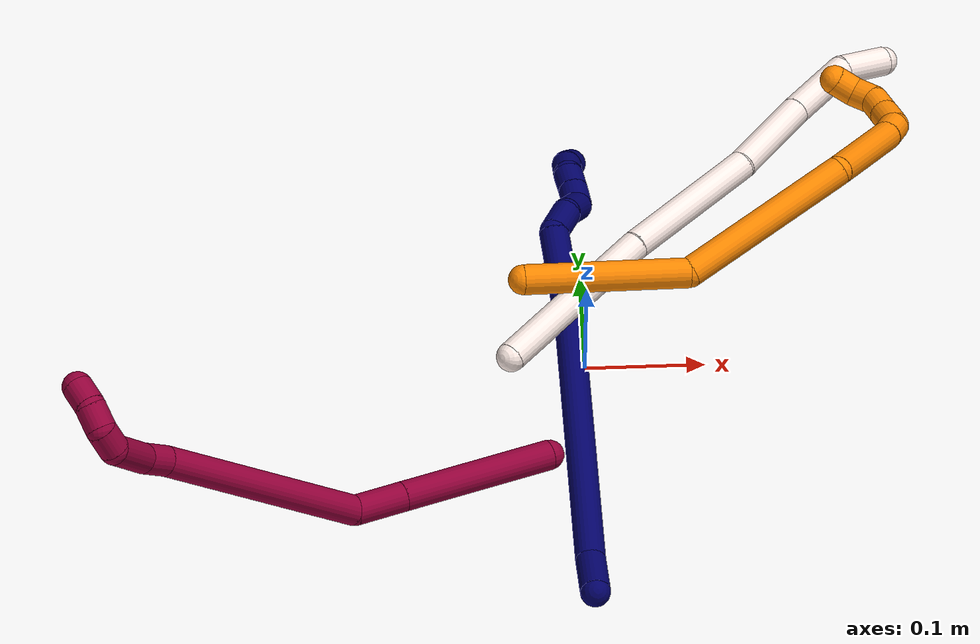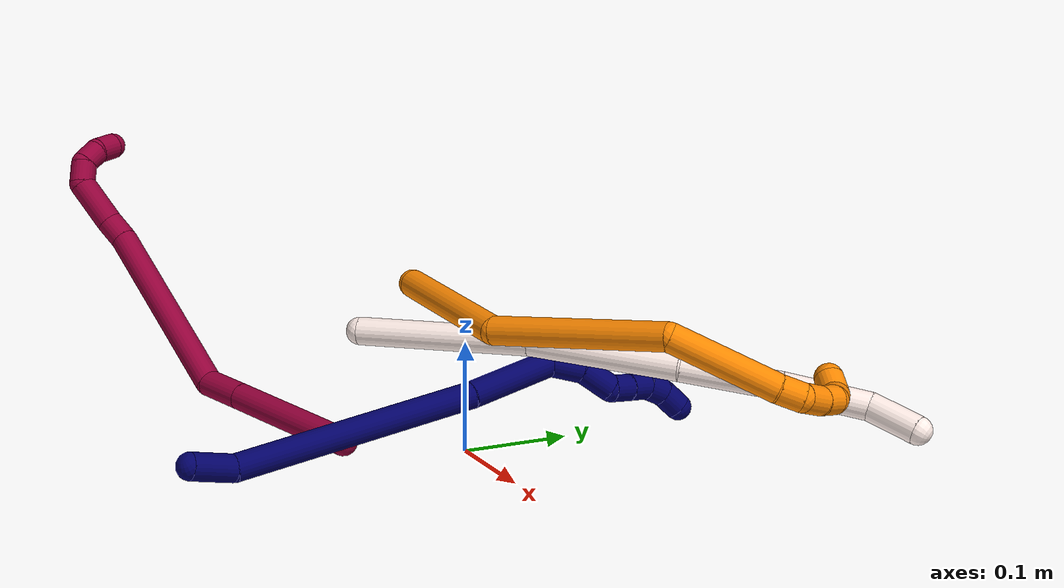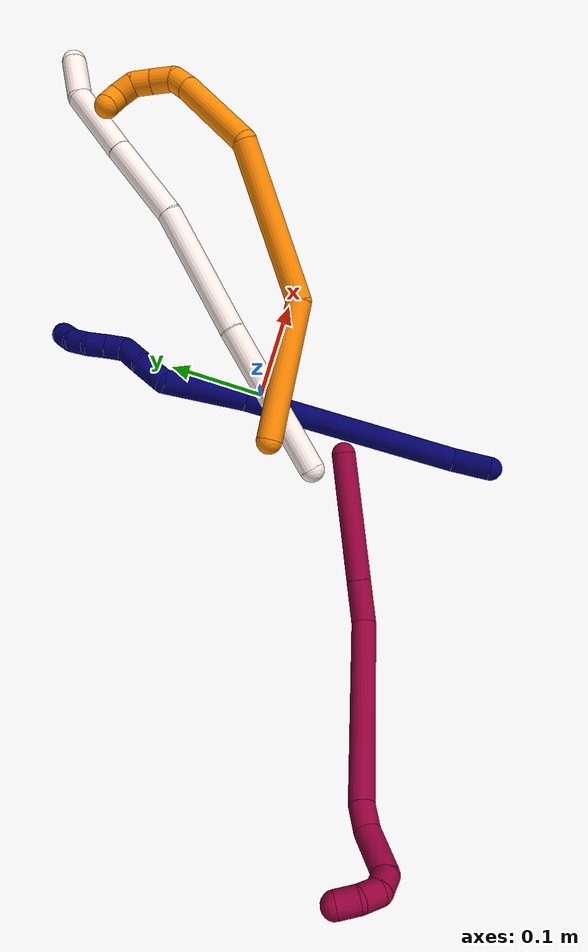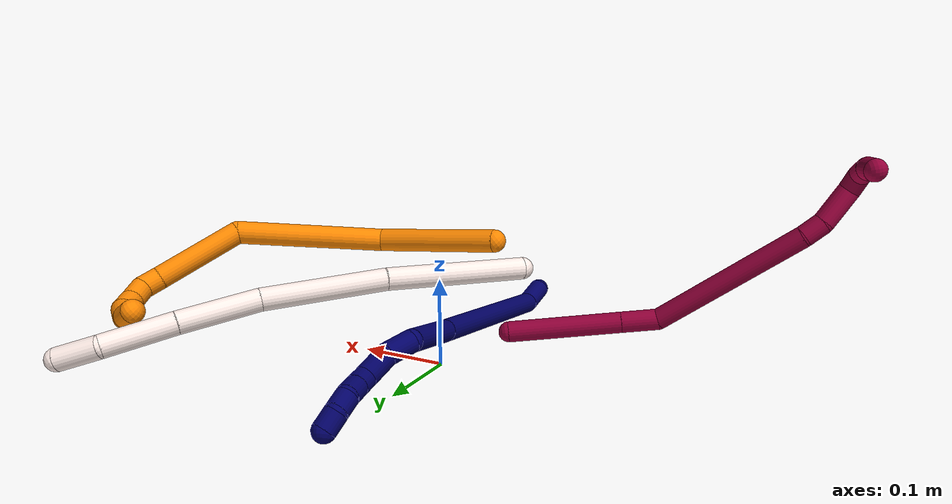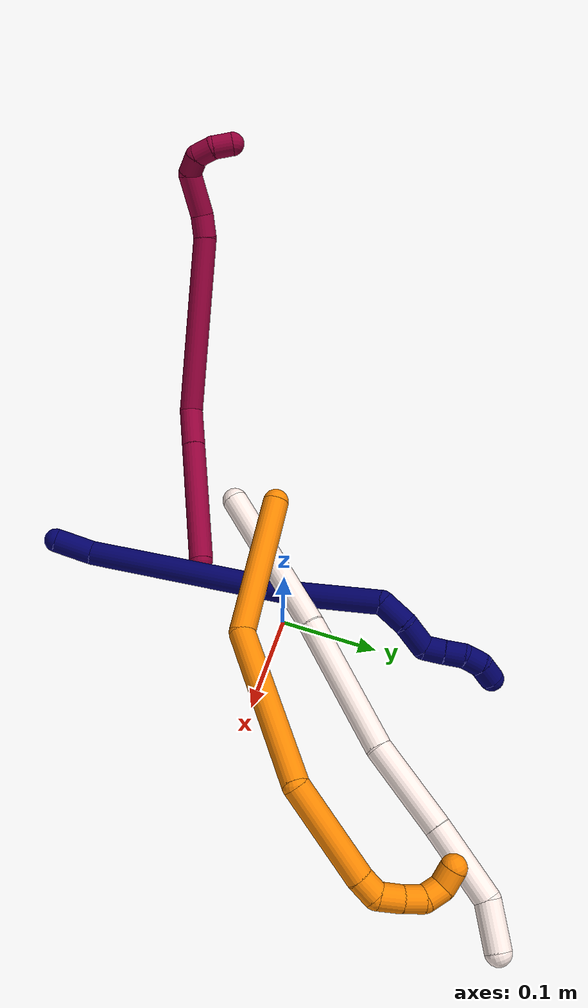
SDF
<sdf version="1.7">
 <world name="default">
  <model name="photoneo_s_sensor">
   <static>1</static>
   <pose>0 0 2 1.57079 1.57079 3.14159</pose>
   <link name="link">
    <inertial><mass>0.1</mass></inertial>
    <sensor name="sensor" type="depth">
     <update_rate>30</update_rate>
     <camera>
      <horizontal_fov>1.22</horizontal_fov>
      <image><width>1920</width><height>1200</height><format>B8G8R8</format></image>
      <clip><near>0.1</near><far>4</far></clip>
      <depth_camera><output>points</output></depth_camera>
     </camera>
     <plugin name="camera_plugin" filename="libgazebo_ros_depth_camera.so">
      <baseline>0.2</baseline>
      <alwaysOn>1</alwaysOn>
      <updateRate>0.0</updateRate>
      <cameraName>camera_ir</cameraName>
      <imageTopicName>/camera/color/image_raw</imageTopicName>
      <cameraInfoTopicName>/camera/color/camera_info</cameraInfoTopicName>
      <depthImageTopicName>/camera/depth/image_raw</depthImageTopicName>
      <depthImageCameraInfoTopicName>/camera/depth/camera_info</depthImageCameraInfoTopicName>
      <pointCloudTopicName>/camera/depth/points</pointCloudTopicName>
      <frameName>fr_optical</frameName>
      <pointCloudCutoff>0.1</pointCloudCutoff>
      <pointCloudCutoffMax>2.0</pointCloudCutoffMax>
      <distortionK1>0</distortionK1>
      <distortionK2>0</distortionK2>
      <distortionK3>0</distortionK3>
      <distortionT1>0</distortionT1>
      <distortionT2>0</distortionT2>
      <CxPrime>0</CxPrime>
      <Cx>0</Cx>
      <Cy>0</Cy>
      <focalLength>0</focalLength>
      <hackBaseline>0</hackBaseline>
     </plugin>
    </sensor>
   </link>
  </model>
  <model name="7">
   <static>0</static>
   <link name="7">
    <collision name="collision-cylinder-e_1_1_4">
     <pose>-0.014025 0.006054 -0.013213 -2.71194 -0.767553 2.15077</pose>
     <geometry><cylinder><radius>0.0125</radius><length>0.040395</length></cylinder></geometry>
     <surface>
      <friction><ode><mu>1.16</mu><mu2>1.16</mu2><slip1>0</slip1><slip2>0</slip2></ode></friction>
      <contact><ode><kp>1e+06</kp><kd>1</kd><max_vel>0</max_vel><min_depth>0.001</min_depth></ode></contact>
     </surface>
    </collision>
    <visual name="visual-cylinder-e_1_1_4">
     <pose>-0.014025 0.006054 -0.013213 -2.71194 -0.767553 2.15077</pose>
     <geometry><cylinder><radius>0.0125</radius><length>0.040395</length></cylinder></geometry>
     <material><ambient>0.003922 0 0.403922 1</ambient></material>
    </visual>
    <collision name="collision-cylinder-e_2_4_5">
     <pose>-0.12831 0.04983 -0.067595 -2.39987 -1.06266 1.97254</pose>
     <geometry><cylinder><radius>0.0125</radius><length>0.22952</length></cylinder></geometry>
     <surface>
      <friction><ode><mu>1.16</mu><mu2>1.16</mu2><slip1>0</slip1><slip2>0</slip2></ode></friction>
      <contact><ode><kp>1e+06</kp><kd>1</kd><max_vel>0</max_vel><min_depth>0.001</min_depth></ode></contact>
     </surface>
    </collision>
    <visual name="visual-cylinder-e_2_4_5">
     <pose>-0.12831 0.04983 -0.067595 -2.39987 -1.06266 1.97254</pose>
     <geometry><cylinder><radius>0.0125</radius><length>0.22952</length></cylinder></geometry>
     <material><ambient>0.003922 0 0.403922 1</ambient></material>
    </visual>
    <collision name="collision-cylinder-e_3_5_6">
     <pose>-0.267683 0.098372 -0.122362 -2.46948 -1.15267 2.1553</pose>
     <geometry><cylinder><radius>0.0125</radius><length>0.085601</length></cylinder></geometry>
     <surface>
      <friction><ode><mu>1.16</mu><mu2>1.16</mu2><slip1>0</slip1><slip2>0</slip2></ode></friction>
      <contact><ode><kp>1e+06</kp><kd>1</kd><max_vel>0</max_vel><min_depth>0.001</min_depth></ode></contact>
     </surface>
    </collision>
    <visual name="visual-cylinder-e_3_5_6">
     <pose>-0.267683 0.098372 -0.122362 -2.46948 -1.15267 2.1553</pose>
     <geometry><cylinder><radius>0.0125</radius><length>0.085601</length></cylinder></geometry>
     <material><ambient>0.003922 0 0.403922 1</ambient></material>
    </visual>
    <collision name="collision-cylinder-e_4_6_7">
     <pose>-0.314335 0.119633 -0.144971 -2.28278 -0.50027 1.01785</pose>
     <geometry><cylinder><radius>0.0125</radius><length>0.031433</length></cylinder></geometry>
     <surface>
      <friction><ode><mu>1.16</mu><mu2>1.16</mu2><slip1>0</slip1><slip2>0</slip2></ode></friction>
      <contact><ode><kp>1e+06</kp><kd>1</kd><max_vel>0</max_vel><min_depth>0.001</min_depth></ode></contact>
     </surface>
    </collision>
    <visual name="visual-cylinder-e_4_6_7">
     <pose>-0.314335 0.119633 -0.144971 -2.28278 -0.50027 1.01785</pose>
     <geometry><cylinder><radius>0.0125</radius><length>0.031433</length></cylinder></geometry>
     <material><ambient>0.003922 0 0.403922 1</ambient></material>
    </visual>
    <collision name="collision-cylinder-e_5_7_8">
     <pose>-0.324829 0.138848 -0.166432 -2.52765 -0.191624 0.588743</pose>
     <geometry><cylinder><radius>0.0125</radius><length>0.031033</length></cylinder></geometry>
     <surface>
      <friction><ode><mu>1.16</mu><mu2>1.16</mu2><slip1>0</slip1><slip2>0</slip2></ode></friction>
      <contact><ode><kp>1e+06</kp><kd>1</kd><max_vel>0</max_vel><min_depth>0.001</min_depth></ode></contact>
     </surface>
    </collision>
    <visual name="visual-cylinder-e_5_7_8">
     <pose>-0.324829 0.138848 -0.166432 -2.52765 -0.191624 0.588743</pose>
     <geometry><cylinder><radius>0.0125</radius><length>0.031033</length></cylinder></geometry>
     <material><ambient>0.003922 0 0.403922 1</ambient></material>
    </visual>
    <collision name="collision-cylinder-e_6_8_9">
     <pose>-0.335716 0.149986 -0.1849 -2.76745 -0.886949 2.38322</pose>
     <geometry><cylinder><radius>0.0125</radius><length>0.020467</length></cylinder></geometry>
     <surface>
      <friction><ode><mu>1.16</mu><mu2>1.16</mu2><slip1>0</slip1><slip2>0</slip2></ode></friction>
      <contact><ode><kp>1e+06</kp><kd>1</kd><max_vel>0</max_vel><min_depth>0.001</min_depth></ode></contact>
     </surface>
    </collision>
    <visual name="visual-cylinder-e_6_8_9">
     <pose>-0.335716 0.149986 -0.1849 -2.76745 -0.886949 2.38322</pose>
     <geometry><cylinder><radius>0.0125</radius><length>0.020467</length></cylinder></geometry>
     <material><ambient>0.003922 0 0.403922 1</ambient></material>
    </visual>
    <collision name="collision-cylinder-e_7_9_10">
     <pose>-0.351704 0.1543 -0.196896 -2.82613 -0.907984 2.51144</pose>
     <geometry><cylinder><radius>0.0125</radius><length>0.020438</length></cylinder></geometry>
     <surface>
      <friction><ode><mu>1.16</mu><mu2>1.16</mu2><slip1>0</slip1><slip2>0</slip2></ode></friction>
      <contact><ode><kp>1e+06</kp><kd>1</kd><max_vel>0</max_vel><min_depth>0.001</min_depth></ode></contact>
     </surface>
    </collision>
    <visual name="visual-cylinder-e_7_9_10">
     <pose>-0.351704 0.1543 -0.196896 -2.82613 -0.907984 2.51144</pose>
     <geometry><cylinder><radius>0.0125</radius><length>0.020438</length></cylinder></geometry>
     <material><ambient>0.003922 0 0.403922 1</ambient></material>
    </visual>
    <collision name="collision-cylinder-e_8_10_11">
     <pose>-0.364805 0.159208 -0.211113 -2.79704 -0.522927 1.98848</pose>
     <geometry><cylinder><radius>0.0125</radius><length>0.020207</length></cylinder></geometry>
     <surface>
      <friction><ode><mu>1.16</mu><mu2>1.16</mu2><slip1>0</slip1><slip2>0</slip2></ode></friction>
      <contact><ode><kp>1e+06</kp><kd>1</kd><max_vel>0</max_vel><min_depth>0.001</min_depth></ode></contact>
     </surface>
    </collision>
    <visual name="visual-cylinder-e_8_10_11">
     <pose>-0.364805 0.159208 -0.211113 -2.79704 -0.522927 1.98848</pose>
     <geometry><cylinder><radius>0.0125</radius><length>0.020207</length></cylinder></geometry>
     <material><ambient>0.003922 0 0.403922 1</ambient></material>
    </visual>
    <collision name="collision-cylinder-e_9_11_2">
     <pose>-0.371052 0.166751 -0.228668 -2.68409 -0.115163 0.485413</pose>
     <geometry><cylinder><radius>0.0125</radius><length>0.020908</length></cylinder></geometry>
     <surface>
      <friction><ode><mu>1.16</mu><mu2>1.16</mu2><slip1>0</slip1><slip2>0</slip2></ode></friction>
      <contact><ode><kp>1e+06</kp><kd>1</kd><max_vel>0</max_vel><min_depth>0.001</min_depth></ode></contact>
     </surface>
    </collision>
    <visual name="visual-cylinder-e_9_11_2">
     <pose>-0.371052 0.166751 -0.228668 -2.68409 -0.115163 0.485413</pose>
     <geometry><cylinder><radius>0.0125</radius><length>0.020908</length></cylinder></geometry>
     <material><ambient>0.003922 0 0.403922 1</ambient></material>
    </visual>
    <collision name="collision-sphere-2">
     <pose>-0.372253 0.171338 -0.237985 0 -0 0</pose>
     <geometry><sphere><radius>0.0125</radius></sphere></geometry>
     <surface>
      <friction><ode><mu>1.16</mu><mu2>1.16</mu2><slip1>0</slip1><slip2>0</slip2></ode></friction>
      <contact><ode><kp>1e+06</kp><kd>1</kd><max_vel>0</max_vel><min_depth>0.001</min_depth></ode></contact>
     </surface>
    </collision>
    <visual name="visual-sphere-2">
     <pose>-0.372253 0.171338 -0.237985 0 -0 0</pose>
     <geometry><sphere><radius>0.0125</radius></sphere></geometry>
     <material><ambient>0.003922 0 0.403922 1</ambient></material>
    </visual>
    <collision name="collision-sphere-11">
     <pose>-0.369851 0.162164 -0.219351 0 -0 0</pose>
     <geometry><sphere><radius>0.0125</radius></sphere></geometry>
     <surface>
      <friction><ode><mu>1.16</mu><mu2>1.16</mu2><slip1>0</slip1><slip2>0</slip2></ode></friction>
      <contact><ode><kp>1e+06</kp><kd>1</kd><max_vel>0</max_vel><min_depth>0.001</min_depth></ode></contact>
     </surface>
    </collision>
    <visual name="visual-sphere-11">
     <pose>-0.369851 0.162164 -0.219351 0 -0 0</pose>
     <geometry><sphere><radius>0.0125</radius></sphere></geometry>
     <material><ambient>0.003922 0 0.403922 1</ambient></material>
    </visual>
    <collision name="collision-sphere-10">
     <pose>-0.359759 0.156251 -0.202874 0 -0 0</pose>
     <geometry><sphere><radius>0.0125</radius></sphere></geometry>
     <surface>
      <friction><ode><mu>1.16</mu><mu2>1.16</mu2><slip1>0</slip1><slip2>0</slip2></ode></friction>
      <contact><ode><kp>1e+06</kp><kd>1</kd><max_vel>0</max_vel><min_depth>0.001</min_depth></ode></contact>
     </surface>
    </collision>
    <visual name="visual-sphere-10">
     <pose>-0.359759 0.156251 -0.202874 0 -0 0</pose>
     <geometry><sphere><radius>0.0125</radius></sphere></geometry>
     <material><ambient>0.003922 0 0.403922 1</ambient></material>
    </visual>
    <collision name="collision-sphere-9">
     <pose>-0.343649 0.152349 -0.190918 0 -0 0</pose>
     <geometry><sphere><radius>0.0125</radius></sphere></geometry>
     <surface>
      <friction><ode><mu>1.16</mu><mu2>1.16</mu2><slip1>0</slip1><slip2>0</slip2></ode></friction>
      <contact><ode><kp>1e+06</kp><kd>1</kd><max_vel>0</max_vel><min_depth>0.001</min_depth></ode></contact>
     </surface>
    </collision>
    <visual name="visual-sphere-9">
     <pose>-0.343649 0.152349 -0.190918 0 -0 0</pose>
     <geometry><sphere><radius>0.0125</radius></sphere></geometry>
     <material><ambient>0.003922 0 0.403922 1</ambient></material>
    </visual>
    <collision name="collision-sphere-4">
     <pose>-0.028049 0.012109 -0.026426 0 -0 0</pose>
     <geometry><sphere><radius>0.0125</radius></sphere></geometry>
     <surface>
      <friction><ode><mu>1.16</mu><mu2>1.16</mu2><slip1>0</slip1><slip2>0</slip2></ode></friction>
      <contact><ode><kp>1e+06</kp><kd>1</kd><max_vel>0</max_vel><min_depth>0.001</min_depth></ode></contact>
     </surface>
    </collision>
    <visual name="visual-sphere-4">
     <pose>-0.028049 0.012109 -0.026426 0 -0 0</pose>
     <geometry><sphere><radius>0.0125</radius></sphere></geometry>
     <material><ambient>0.003922 0 0.403922 1</ambient></material>
    </visual>
    <collision name="collision-sphere-1">
     <geometry><sphere><radius>0.0125</radius></sphere></geometry>
     <surface>
      <friction><ode><mu>1.16</mu><mu2>1.16</mu2><slip1>0</slip1><slip2>0</slip2></ode></friction>
      <contact><ode><kp>1e+06</kp><kd>1</kd><max_vel>0</max_vel><min_depth>0.001</min_depth></ode></contact>
     </surface>
    </collision>
    <visual name="visual-sphere-1">
     <geometry><sphere><radius>0.0125</radius></sphere></geometry>
     <material><ambient>0.003922 0 0.403922 1</ambient></material>
    </visual>
    <collision name="collision-sphere-8">
     <pose>-0.327784 0.147624 -0.178882 0 -0 0</pose>
     <geometry><sphere><radius>0.0125</radius></sphere></geometry>
     <surface>
      <friction><ode><mu>1.16</mu><mu2>1.16</mu2><slip1>0</slip1><slip2>0</slip2></ode></friction>
      <contact><ode><kp>1e+06</kp><kd>1</kd><max_vel>0</max_vel><min_depth>0.001</min_depth></ode></contact>
     </surface>
    </collision>
    <visual name="visual-sphere-8">
     <pose>-0.327784 0.147624 -0.178882 0 -0 0</pose>
     <geometry><sphere><radius>0.0125</radius></sphere></geometry>
     <material><ambient>0.003922 0 0.403922 1</ambient></material>
    </visual>
    <collision name="collision-sphere-5">
     <pose>-0.22857 0.087551 -0.108763 0 -0 0</pose>
     <geometry><sphere><radius>0.0125</radius></sphere></geometry>
     <surface>
      <friction><ode><mu>1.16</mu><mu2>1.16</mu2><slip1>0</slip1><slip2>0</slip2></ode></friction>
      <contact><ode><kp>1e+06</kp><kd>1</kd><max_vel>0</max_vel><min_depth>0.001</min_depth></ode></contact>
     </surface>
    </collision>
    <visual name="visual-sphere-5">
     <pose>-0.22857 0.087551 -0.108763 0 -0 0</pose>
     <geometry><sphere><radius>0.0125</radius></sphere></geometry>
     <material><ambient>0.003922 0 0.403922 1</ambient></material>
    </visual>
    <collision name="collision-sphere-6">
     <pose>-0.306796 0.109192 -0.135962 0 -0 0</pose>
     <geometry><sphere><radius>0.0125</radius></sphere></geometry>
     <surface>
      <friction><ode><mu>1.16</mu><mu2>1.16</mu2><slip1>0</slip1><slip2>0</slip2></ode></friction>
      <contact><ode><kp>1e+06</kp><kd>1</kd><max_vel>0</max_vel><min_depth>0.001</min_depth></ode></contact>
     </surface>
    </collision>
    <visual name="visual-sphere-6">
     <pose>-0.306796 0.109192 -0.135962 0 -0 0</pose>
     <geometry><sphere><radius>0.0125</radius></sphere></geometry>
     <material><ambient>0.003922 0 0.403922 1</ambient></material>
    </visual>
    <collision name="collision-sphere-7">
     <pose>-0.321874 0.130073 -0.153981 0 -0 0</pose>
     <geometry><sphere><radius>0.0125</radius></sphere></geometry>
     <surface>
      <friction><ode><mu>1.16</mu><mu2>1.16</mu2><slip1>0</slip1><slip2>0</slip2></ode></friction>
      <contact><ode><kp>1e+06</kp><kd>1</kd><max_vel>0</max_vel><min_depth>0.001</min_depth></ode></contact>
     </surface>
    </collision>
    <visual name="visual-sphere-7">
     <pose>-0.321874 0.130073 -0.153981 0 -0 0</pose>
     <geometry><sphere><radius>0.0125</radius></sphere></geometry>
     <material><ambient>0.003922 0 0.403922 1</ambient></material>
    </visual>
    <inertial>
     <pose>-0.204158 0.082196 -0.106199 0 -0 0</pose>
     <mass>0.5</mass>
     <inertia><ixx>0.000253</ixx><ixy>0</ixy><ixz>0</ixz><iyy>0.0014</iyy><iyz>0</iyz><izz>0.000574</izz></inertia>
    </inertial>
   </link>
   <pose>-0.003815 -0.254057 0.019609 0.033091 0.541114 -1.18627</pose>
  </model>
  <model name="8">
   <static>0</static>
   <link name="8">
    <collision name="collision-cylinder-e_1_1_4">
     <pose>0.002923 -0.005856 0.066531 0.087793 0.043738 0.001921</pose>
     <geometry><cylinder><radius>0.0125</radius><length>0.133705</length></cylinder></geometry>
     <surface>
      <friction><ode><mu>1.16</mu><mu2>1.16</mu2><slip1>0</slip1><slip2>0</slip2></ode></friction>
      <contact><ode><kp>1e+06</kp><kd>1</kd><max_vel>0</max_vel><min_depth>0.001</min_depth></ode></contact>
     </surface>
    </collision>
    <visual name="visual-cylinder-e_1_1_4">
     <pose>0.002923 -0.005856 0.066531 0.087793 0.043738 0.001921</pose>
     <geometry><cylinder><radius>0.0125</radius><length>0.133705</length></cylinder></geometry>
     <material><ambient>0.584314 0 0.227451 1</ambient></material>
    </visual>
    <collision name="collision-cylinder-e_2_4_5">
     <pose>0.006891 -0.013622 0.154758 0.087818 0.047949 0.002107</pose>
     <geometry><cylinder><radius>0.0125</radius><length>0.043608</length></cylinder></geometry>
     <surface>
      <friction><ode><mu>1.16</mu><mu2>1.16</mu2><slip1>0</slip1><slip2>0</slip2></ode></friction>
      <contact><ode><kp>1e+06</kp><kd>1</kd><max_vel>0</max_vel><min_depth>0.001</min_depth></ode></contact>
     </surface>
    </collision>
    <visual name="visual-cylinder-e_2_4_5">
     <pose>0.006891 -0.013622 0.154758 0.087818 0.047949 0.002107</pose>
     <geometry><cylinder><radius>0.0125</radius><length>0.043608</length></cylinder></geometry>
     <material><ambient>0.584314 0 0.227451 1</ambient></material>
    </visual>
    <collision name="collision-cylinder-e_3_5_6">
     <pose>-0.036526 -0.019124 0.259616 0.043156 -0.490587 -0.010805</pose>
     <geometry><cylinder><radius>0.0125</radius><length>0.188742</length></cylinder></geometry>
     <surface>
      <friction><ode><mu>1.16</mu><mu2>1.16</mu2><slip1>0</slip1><slip2>0</slip2></ode></friction>
      <contact><ode><kp>1e+06</kp><kd>1</kd><max_vel>0</max_vel><min_depth>0.001</min_depth></ode></contact>
     </surface>
    </collision>
    <visual name="visual-cylinder-e_3_5_6">
     <pose>-0.036526 -0.019124 0.259616 0.043156 -0.490587 -0.010805</pose>
     <geometry><cylinder><radius>0.0125</radius><length>0.188742</length></cylinder></geometry>
     <material><ambient>0.584314 0 0.227451 1</ambient></material>
    </visual>
    <collision name="collision-cylinder-e_4_6_7">
     <pose>-0.086186 -0.020605 0.353897 -0.187531 -0.430571 0.041123</pose>
     <geometry><cylinder><radius>0.0125</radius><length>0.024906</length></cylinder></geometry>
     <surface>
      <friction><ode><mu>1.16</mu><mu2>1.16</mu2><slip1>0</slip1><slip2>0</slip2></ode></friction>
      <contact><ode><kp>1e+06</kp><kd>1</kd><max_vel>0</max_vel><min_depth>0.001</min_depth></ode></contact>
     </surface>
    </collision>
    <visual name="visual-cylinder-e_4_6_7">
     <pose>-0.086186 -0.020605 0.353897 -0.187531 -0.430571 0.041123</pose>
     <geometry><cylinder><radius>0.0125</radius><length>0.024906</length></cylinder></geometry>
     <material><ambient>0.584314 0 0.227451 1</ambient></material>
    </visual>
    <collision name="collision-cylinder-e_5_7_8">
     <pose>-0.103897 -0.009362 0.382081 -0.491371 -0.573872 0.147714</pose>
     <geometry><cylinder><radius>0.0125</radius><length>0.046099</length></cylinder></geometry>
     <surface>
      <friction><ode><mu>1.16</mu><mu2>1.16</mu2><slip1>0</slip1><slip2>0</slip2></ode></friction>
      <contact><ode><kp>1e+06</kp><kd>1</kd><max_vel>0</max_vel><min_depth>0.001</min_depth></ode></contact>
     </surface>
    </collision>
    <visual name="visual-cylinder-e_5_7_8">
     <pose>-0.103897 -0.009362 0.382081 -0.491371 -0.573872 0.147714</pose>
     <geometry><cylinder><radius>0.0125</radius><length>0.046099</length></cylinder></geometry>
     <material><ambient>0.584314 0 0.227451 1</ambient></material>
    </visual>
    <collision name="collision-cylinder-e_6_8_9">
     <pose>-0.125968 -0.001443 0.403874 0.25149 -1.0988 -0.154491</pose>
     <geometry><cylinder><radius>0.0125</radius><length>0.021463</length></cylinder></geometry>
     <surface>
      <friction><ode><mu>1.16</mu><mu2>1.16</mu2><slip1>0</slip1><slip2>0</slip2></ode></friction>
      <contact><ode><kp>1e+06</kp><kd>1</kd><max_vel>0</max_vel><min_depth>0.001</min_depth></ode></contact>
     </surface>
    </collision>
    <visual name="visual-cylinder-e_6_8_9">
     <pose>-0.125968 -0.001443 0.403874 0.25149 -1.0988 -0.154491</pose>
     <geometry><cylinder><radius>0.0125</radius><length>0.021463</length></cylinder></geometry>
     <material><ambient>0.584314 0 0.227451 1</ambient></material>
    </visual>
    <collision name="collision-cylinder-e_7_9_10">
     <pose>-0.143252 -0.009311 0.409511 1.43463 -0.855238 -0.756798</pose>
     <geometry><cylinder><radius>0.0125</radius><length>0.020474</length></cylinder></geometry>
     <surface>
      <friction><ode><mu>1.16</mu><mu2>1.16</mu2><slip1>0</slip1><slip2>0</slip2></ode></friction>
      <contact><ode><kp>1e+06</kp><kd>1</kd><max_vel>0</max_vel><min_depth>0.001</min_depth></ode></contact>
     </surface>
    </collision>
    <visual name="visual-cylinder-e_7_9_10">
     <pose>-0.143252 -0.009311 0.409511 1.43463 -0.855238 -0.756798</pose>
     <geometry><cylinder><radius>0.0125</radius><length>0.020474</length></cylinder></geometry>
     <material><ambient>0.584314 0 0.227451 1</ambient></material>
    </visual>
    <collision name="collision-cylinder-e_8_10_2">
     <pose>-0.155568 -0.025404 0.41076 1.53506 -0.452279 -0.436908</pose>
     <geometry><cylinder><radius>0.0125</radius><length>0.021004</length></cylinder></geometry>
     <surface>
      <friction><ode><mu>1.16</mu><mu2>1.16</mu2><slip1>0</slip1><slip2>0</slip2></ode></friction>
      <contact><ode><kp>1e+06</kp><kd>1</kd><max_vel>0</max_vel><min_depth>0.001</min_depth></ode></contact>
     </surface>
    </collision>
    <visual name="visual-cylinder-e_8_10_2">
     <pose>-0.155568 -0.025404 0.41076 1.53506 -0.452279 -0.436908</pose>
     <geometry><cylinder><radius>0.0125</radius><length>0.021004</length></cylinder></geometry>
     <material><ambient>0.584314 0 0.227451 1</ambient></material>
    </visual>
    <collision name="collision-sphere-2">
     <pose>-0.160158 -0.034844 0.411098 0 -0 0</pose>
     <geometry><sphere><radius>0.0125</radius></sphere></geometry>
     <surface>
      <friction><ode><mu>1.16</mu><mu2>1.16</mu2><slip1>0</slip1><slip2>0</slip2></ode></friction>
      <contact><ode><kp>1e+06</kp><kd>1</kd><max_vel>0</max_vel><min_depth>0.001</min_depth></ode></contact>
     </surface>
    </collision>
    <visual name="visual-sphere-2">
     <pose>-0.160158 -0.034844 0.411098 0 -0 0</pose>
     <geometry><sphere><radius>0.0125</radius></sphere></geometry>
     <material><ambient>0.584314 0 0.227451 1</ambient></material>
    </visual>
    <collision name="collision-sphere-10">
     <pose>-0.150978 -0.015964 0.410423 0 -0 0</pose>
     <geometry><sphere><radius>0.0125</radius></sphere></geometry>
     <surface>
      <friction><ode><mu>1.16</mu><mu2>1.16</mu2><slip1>0</slip1><slip2>0</slip2></ode></friction>
      <contact><ode><kp>1e+06</kp><kd>1</kd><max_vel>0</max_vel><min_depth>0.001</min_depth></ode></contact>
     </surface>
    </collision>
    <visual name="visual-sphere-10">
     <pose>-0.150978 -0.015964 0.410423 0 -0 0</pose>
     <geometry><sphere><radius>0.0125</radius></sphere></geometry>
     <material><ambient>0.584314 0 0.227451 1</ambient></material>
    </visual>
    <collision name="collision-sphere-9">
     <pose>-0.135526 -0.002657 0.408599 0 -0 0</pose>
     <geometry><sphere><radius>0.0125</radius></sphere></geometry>
     <surface>
      <friction><ode><mu>1.16</mu><mu2>1.16</mu2><slip1>0</slip1><slip2>0</slip2></ode></friction>
      <contact><ode><kp>1e+06</kp><kd>1</kd><max_vel>0</max_vel><min_depth>0.001</min_depth></ode></contact>
     </surface>
    </collision>
    <visual name="visual-sphere-9">
     <pose>-0.135526 -0.002657 0.408599 0 -0 0</pose>
     <geometry><sphere><radius>0.0125</radius></sphere></geometry>
     <material><ambient>0.584314 0 0.227451 1</ambient></material>
    </visual>
    <collision name="collision-sphere-4">
     <pose>0.005846 -0.011712 0.133063 0 -0 0</pose>
     <geometry><sphere><radius>0.0125</radius></sphere></geometry>
     <surface>
      <friction><ode><mu>1.16</mu><mu2>1.16</mu2><slip1>0</slip1><slip2>0</slip2></ode></friction>
      <contact><ode><kp>1e+06</kp><kd>1</kd><max_vel>0</max_vel><min_depth>0.001</min_depth></ode></contact>
     </surface>
    </collision>
    <visual name="visual-sphere-4">
     <pose>0.005846 -0.011712 0.133063 0 -0 0</pose>
     <geometry><sphere><radius>0.0125</radius></sphere></geometry>
     <material><ambient>0.584314 0 0.227451 1</ambient></material>
    </visual>
    <collision name="collision-sphere-1">
     <geometry><sphere><radius>0.0125</radius></sphere></geometry>
     <surface>
      <friction><ode><mu>1.16</mu><mu2>1.16</mu2><slip1>0</slip1><slip2>0</slip2></ode></friction>
      <contact><ode><kp>1e+06</kp><kd>1</kd><max_vel>0</max_vel><min_depth>0.001</min_depth></ode></contact>
     </surface>
    </collision>
    <visual name="visual-sphere-1">
     <geometry><sphere><radius>0.0125</radius></sphere></geometry>
     <material><ambient>0.584314 0 0.227451 1</ambient></material>
    </visual>
    <collision name="collision-sphere-8">
     <pose>-0.11641 -0.000229 0.399148 0 -0 0</pose>
     <geometry><sphere><radius>0.0125</radius></sphere></geometry>
     <surface>
      <friction><ode><mu>1.16</mu><mu2>1.16</mu2><slip1>0</slip1><slip2>0</slip2></ode></friction>
      <contact><ode><kp>1e+06</kp><kd>1</kd><max_vel>0</max_vel><min_depth>0.001</min_depth></ode></contact>
     </surface>
    </collision>
    <visual name="visual-sphere-8">
     <pose>-0.11641 -0.000229 0.399148 0 -0 0</pose>
     <geometry><sphere><radius>0.0125</radius></sphere></geometry>
     <material><ambient>0.584314 0 0.227451 1</ambient></material>
    </visual>
    <collision name="collision-sphere-5">
     <pose>0.007936 -0.015532 0.176452 0 -0 0</pose>
     <geometry><sphere><radius>0.0125</radius></sphere></geometry>
     <surface>
      <friction><ode><mu>1.16</mu><mu2>1.16</mu2><slip1>0</slip1><slip2>0</slip2></ode></friction>
      <contact><ode><kp>1e+06</kp><kd>1</kd><max_vel>0</max_vel><min_depth>0.001</min_depth></ode></contact>
     </surface>
    </collision>
    <visual name="visual-sphere-5">
     <pose>0.007936 -0.015532 0.176452 0 -0 0</pose>
     <geometry><sphere><radius>0.0125</radius></sphere></geometry>
     <material><ambient>0.584314 0 0.227451 1</ambient></material>
    </visual>
    <collision name="collision-sphere-6">
     <pose>-0.080988 -0.022715 0.342779 0 -0 0</pose>
     <geometry><sphere><radius>0.0125</radius></sphere></geometry>
     <surface>
      <friction><ode><mu>1.16</mu><mu2>1.16</mu2><slip1>0</slip1><slip2>0</slip2></ode></friction>
      <contact><ode><kp>1e+06</kp><kd>1</kd><max_vel>0</max_vel><min_depth>0.001</min_depth></ode></contact>
     </surface>
    </collision>
    <visual name="visual-sphere-6">
     <pose>-0.080988 -0.022715 0.342779 0 -0 0</pose>
     <geometry><sphere><radius>0.0125</radius></sphere></geometry>
     <material><ambient>0.584314 0 0.227451 1</ambient></material>
    </visual>
    <collision name="collision-sphere-7">
     <pose>-0.091384 -0.018495 0.365015 0 -0 0</pose>
     <geometry><sphere><radius>0.0125</radius></sphere></geometry>
     <surface>
      <friction><ode><mu>1.16</mu><mu2>1.16</mu2><slip1>0</slip1><slip2>0</slip2></ode></friction>
      <contact><ode><kp>1e+06</kp><kd>1</kd><max_vel>0</max_vel><min_depth>0.001</min_depth></ode></contact>
     </surface>
    </collision>
    <visual name="visual-sphere-7">
     <pose>-0.091384 -0.018495 0.365015 0 -0 0</pose>
     <geometry><sphere><radius>0.0125</radius></sphere></geometry>
     <material><ambient>0.584314 0 0.227451 1</ambient></material>
    </visual>
    <inertial>
     <pose>-0.044086 -0.013373 0.233505 0 -0 0</pose>
     <mass>0.5</mass>
     <inertia>
      <ixx>0.000709</ixx>
      <ixy>0</ixy>
      <ixz>0</ixz>
      <iyy>0.000786</iyy>
      <iyz>0</iyz>
      <izz>0.000338</izz>
     </inertia>
    </inertial>
   </link>
   <pose>-0.034754 -0.1029 0.011873 1.06847 1.16358 -1.56048</pose>
  </model>
  <model name="11">
   <static>0</static>
   <link name="11">
    <collision name="collision-cylinder-e_1_1_4">
     <pose>0.038353 0.004725 0.068564 -0.0688 0.509004 -0.017904</pose>
     <geometry><cylinder><radius>0.0125</radius><length>0.157408</length></cylinder></geometry>
     <surface>
      <friction><ode><mu>1.16</mu><mu2>1.16</mu2><slip1>0</slip1><slip2>0</slip2></ode></friction>
      <contact><ode><kp>1e+06</kp><kd>1</kd><max_vel>0</max_vel><min_depth>0.001</min_depth></ode></contact>
     </surface>
    </collision>
    <visual name="visual-cylinder-e_1_1_4">
     <pose>0.038353 0.004725 0.068564 -0.0688 0.509004 -0.017904</pose>
     <geometry><cylinder><radius>0.0125</radius><length>0.157408</length></cylinder></geometry>
     <material><ambient>1 0.933333 0.909804 1</ambient></material>
    </visual>
    <collision name="collision-cylinder-e_2_4_5">
     <pose>0.103647 0.013499 0.198737 -0.065642 0.411437 -0.013702</pose>
     <geometry><cylinder><radius>0.0125</radius><length>0.134727</length></cylinder></geometry>
     <surface>
      <friction><ode><mu>1.16</mu><mu2>1.16</mu2><slip1>0</slip1><slip2>0</slip2></ode></friction>
      <contact><ode><kp>1e+06</kp><kd>1</kd><max_vel>0</max_vel><min_depth>0.001</min_depth></ode></contact>
     </surface>
    </collision>
    <visual name="visual-cylinder-e_2_4_5">
     <pose>0.103647 0.013499 0.198737 -0.065642 0.411437 -0.013702</pose>
     <geometry><cylinder><radius>0.0125</radius><length>0.134727</length></cylinder></geometry>
     <material><ambient>1 0.933333 0.909804 1</ambient></material>
    </visual>
    <collision name="collision-cylinder-e_3_5_6">
     <pose>0.147459 0.012649 0.30018 0.122401 0.39796 0.024712</pose>
     <geometry><cylinder><radius>0.0125</radius><length>0.087073</length></cylinder></geometry>
     <surface>
      <friction><ode><mu>1.16</mu><mu2>1.16</mu2><slip1>0</slip1><slip2>0</slip2></ode></friction>
      <contact><ode><kp>1e+06</kp><kd>1</kd><max_vel>0</max_vel><min_depth>0.001</min_depth></ode></contact>
     </surface>
    </collision>
    <visual name="visual-cylinder-e_3_5_6">
     <pose>0.147459 0.012649 0.30018 0.122401 0.39796 0.024712</pose>
     <geometry><cylinder><radius>0.0125</radius><length>0.087073</length></cylinder></geometry>
     <material><ambient>1 0.933333 0.909804 1</ambient></material>
    </visual>
    <collision name="collision-cylinder-e_4_6_7">
     <pose>0.177314 0.003932 0.375195 0.108064 0.351629 0.019216</pose>
     <geometry><cylinder><radius>0.0125</radius><length>0.075387</length></cylinder></geometry>
     <surface>
      <friction><ode><mu>1.16</mu><mu2>1.16</mu2><slip1>0</slip1><slip2>0</slip2></ode></friction>
      <contact><ode><kp>1e+06</kp><kd>1</kd><max_vel>0</max_vel><min_depth>0.001</min_depth></ode></contact>
     </surface>
    </collision>
    <visual name="visual-cylinder-e_4_6_7">
     <pose>0.177314 0.003932 0.375195 0.108064 0.351629 0.019216</pose>
     <geometry><cylinder><radius>0.0125</radius><length>0.075387</length></cylinder></geometry>
     <material><ambient>1 0.933333 0.909804 1</ambient></material>
    </visual>
    <collision name="collision-cylinder-e_5_7_2">
     <pose>0.19273 0.005596 0.432272 -0.245272 0.107376 -0.013247</pose>
     <geometry><cylinder><radius>0.0125</radius><length>0.045405</length></cylinder></geometry>
     <surface>
      <friction><ode><mu>1.16</mu><mu2>1.16</mu2><slip1>0</slip1><slip2>0</slip2></ode></friction>
      <contact><ode><kp>1e+06</kp><kd>1</kd><max_vel>0</max_vel><min_depth>0.001</min_depth></ode></contact>
     </surface>
    </collision>
    <visual name="visual-cylinder-e_5_7_2">
     <pose>0.19273 0.005596 0.432272 -0.245272 0.107376 -0.013247</pose>
     <geometry><cylinder><radius>0.0125</radius><length>0.045405</length></cylinder></geometry>
     <material><ambient>1 0.933333 0.909804 1</ambient></material>
    </visual>
    <collision name="collision-sphere-2">
     <pose>0.195163 0.011077 0.454168 0 -0 0</pose>
     <geometry><sphere><radius>0.0125</radius></sphere></geometry>
     <surface>
      <friction><ode><mu>1.16</mu><mu2>1.16</mu2><slip1>0</slip1><slip2>0</slip2></ode></friction>
      <contact><ode><kp>1e+06</kp><kd>1</kd><max_vel>0</max_vel><min_depth>0.001</min_depth></ode></contact>
     </surface>
    </collision>
    <visual name="visual-sphere-2">
     <pose>0.195163 0.011077 0.454168 0 -0 0</pose>
     <geometry><sphere><radius>0.0125</radius></sphere></geometry>
     <material><ambient>1 0.933333 0.909804 1</ambient></material>
    </visual>
    <collision name="collision-sphere-7">
     <pose>0.190297 0.000116 0.410376 0 -0 0</pose>
     <geometry><sphere><radius>0.0125</radius></sphere></geometry>
     <surface>
      <friction><ode><mu>1.16</mu><mu2>1.16</mu2><slip1>0</slip1><slip2>0</slip2></ode></friction>
      <contact><ode><kp>1e+06</kp><kd>1</kd><max_vel>0</max_vel><min_depth>0.001</min_depth></ode></contact>
     </surface>
    </collision>
    <visual name="visual-sphere-7">
     <pose>0.190297 0.000116 0.410376 0 -0 0</pose>
     <geometry><sphere><radius>0.0125</radius></sphere></geometry>
     <material><ambient>1 0.933333 0.909804 1</ambient></material>
    </visual>
    <collision name="collision-sphere-6">
     <pose>0.164332 0.007749 0.340014 0 -0 0</pose>
     <geometry><sphere><radius>0.0125</radius></sphere></geometry>
     <surface>
      <friction><ode><mu>1.16</mu><mu2>1.16</mu2><slip1>0</slip1><slip2>0</slip2></ode></friction>
      <contact><ode><kp>1e+06</kp><kd>1</kd><max_vel>0</max_vel><min_depth>0.001</min_depth></ode></contact>
     </surface>
    </collision>
    <visual name="visual-sphere-6">
     <pose>0.164332 0.007749 0.340014 0 -0 0</pose>
     <geometry><sphere><radius>0.0125</radius></sphere></geometry>
     <material><ambient>1 0.933333 0.909804 1</ambient></material>
    </visual>
    <collision name="collision-sphere-5">
     <pose>0.130587 0.017549 0.260346 0 -0 0</pose>
     <geometry><sphere><radius>0.0125</radius></sphere></geometry>
     <surface>
      <friction><ode><mu>1.16</mu><mu2>1.16</mu2><slip1>0</slip1><slip2>0</slip2></ode></friction>
      <contact><ode><kp>1e+06</kp><kd>1</kd><max_vel>0</max_vel><min_depth>0.001</min_depth></ode></contact>
     </surface>
    </collision>
    <visual name="visual-sphere-5">
     <pose>0.130587 0.017549 0.260346 0 -0 0</pose>
     <geometry><sphere><radius>0.0125</radius></sphere></geometry>
     <material><ambient>1 0.933333 0.909804 1</ambient></material>
    </visual>
    <collision name="collision-sphere-1">
     <geometry><sphere><radius>0.0125</radius></sphere></geometry>
     <surface>
      <friction><ode><mu>1.16</mu><mu2>1.16</mu2><slip1>0</slip1><slip2>0</slip2></ode></friction>
      <contact><ode><kp>1e+06</kp><kd>1</kd><max_vel>0</max_vel><min_depth>0.001</min_depth></ode></contact>
     </surface>
    </collision>
    <visual name="visual-sphere-1">
     <geometry><sphere><radius>0.0125</radius></sphere></geometry>
     <material><ambient>1 0.933333 0.909804 1</ambient></material>
    </visual>
    <collision name="collision-sphere-4">
     <pose>0.076706 0.009449 0.137129 0 -0 0</pose>
     <geometry><sphere><radius>0.0125</radius></sphere></geometry>
     <surface>
      <friction><ode><mu>1.16</mu><mu2>1.16</mu2><slip1>0</slip1><slip2>0</slip2></ode></friction>
      <contact><ode><kp>1e+06</kp><kd>1</kd><max_vel>0</max_vel><min_depth>0.001</min_depth></ode></contact>
     </surface>
    </collision>
    <visual name="visual-sphere-4">
     <pose>0.076706 0.009449 0.137129 0 -0 0</pose>
     <geometry><sphere><radius>0.0125</radius></sphere></geometry>
     <material><ambient>1 0.933333 0.909804 1</ambient></material>
    </visual>
    <inertial>
     <pose>0.109918 0.008429 0.223235 0 -0 0</pose>
     <mass>0.5</mass>
     <inertia>
      <ixx>0.00059</ixx>
      <ixy>0</ixy>
      <ixz>0</ixz>
      <iyy>0.00064</iyy>
      <iyz>0</iyz>
      <izz>-0.000271</izz>
     </inertia>
    </inertial>
   </link>
   <pose>-0.06486 -0.073687 0.103165 2.56266 -0.980439 1.37782</pose>
  </model>
  <model name="19">
   <static>0</static>
   <link name="19">
    <collision name="collision-cylinder-e_1_1_4">
     <pose>0.030418 -0.036292 -0.050069 2.51438 0.457139 1.24453</pose>
     <geometry><cylinder><radius>0.0125</radius><length>0.137831</length></cylinder></geometry>
     <surface>
      <friction><ode><mu>1.16</mu><mu2>1.16</mu2><slip1>0</slip1><slip2>0</slip2></ode></friction>
      <contact><ode><kp>1e+06</kp><kd>1</kd><max_vel>0</max_vel><min_depth>0.001</min_depth></ode></contact>
     </surface>
    </collision>
    <visual name="visual-cylinder-e_1_1_4">
     <pose>0.030418 -0.036292 -0.050069 2.51438 0.457139 1.24453</pose>
     <geometry><cylinder><radius>0.0125</radius><length>0.137831</length></cylinder></geometry>
     <material><ambient>0.996078 0.537255 0 1</ambient></material>
    </visual>
    <collision name="collision-cylinder-e_2_4_5">
     <pose>0.115355 -0.074209 -0.159058 3.11403 0.746434 3.07123</pose>
     <geometry><cylinder><radius>0.0125</radius><length>0.16058</length></cylinder></geometry>
     <surface>
      <friction><ode><mu>1.16</mu><mu2>1.16</mu2><slip1>0</slip1><slip2>0</slip2></ode></friction>
      <contact><ode><kp>1e+06</kp><kd>1</kd><max_vel>0</max_vel><min_depth>0.001</min_depth></ode></contact>
     </surface>
    </collision>
    <visual name="visual-cylinder-e_2_4_5">
     <pose>0.115355 -0.074209 -0.159058 3.11403 0.746434 3.07123</pose>
     <geometry><cylinder><radius>0.0125</radius><length>0.16058</length></cylinder></geometry>
     <material><ambient>0.996078 0.537255 0 1</ambient></material>
    </visual>
    <collision name="collision-cylinder-e_3_5_6">
     <pose>0.17936 -0.060722 -0.263004 -2.81779 0.197145 -1.08886</pose>
     <geometry><cylinder><radius>0.0125</radius><length>0.096867</length></cylinder></geometry>
     <surface>
      <friction><ode><mu>1.16</mu><mu2>1.16</mu2><slip1>0</slip1><slip2>0</slip2></ode></friction>
      <contact><ode><kp>1e+06</kp><kd>1</kd><max_vel>0</max_vel><min_depth>0.001</min_depth></ode></contact>
     </surface>
    </collision>
    <visual name="visual-cylinder-e_3_5_6">
     <pose>0.17936 -0.060722 -0.263004 -2.81779 0.197145 -1.08886</pose>
     <geometry><cylinder><radius>0.0125</radius><length>0.096867</length></cylinder></geometry>
     <material><ambient>0.996078 0.537255 0 1</ambient></material>
    </visual>
    <collision name="collision-cylinder-e_4_6_7">
     <pose>0.191198 -0.041 -0.317162 -2.67405 0.225883 -0.889052</pose>
     <geometry><cylinder><radius>0.0125</radius><length>0.02099</length></cylinder></geometry>
     <surface>
      <friction><ode><mu>1.16</mu><mu2>1.16</mu2><slip1>0</slip1><slip2>0</slip2></ode></friction>
      <contact><ode><kp>1e+06</kp><kd>1</kd><max_vel>0</max_vel><min_depth>0.001</min_depth></ode></contact>
     </surface>
    </collision>
    <visual name="visual-cylinder-e_4_6_7">
     <pose>0.191198 -0.041 -0.317162 -2.67405 0.225883 -0.889052</pose>
     <geometry><cylinder><radius>0.0125</radius><length>0.02099</length></cylinder></geometry>
     <material><ambient>0.996078 0.537255 0 1</ambient></material>
    </visual>
    <collision name="collision-cylinder-e_5_7_8">
     <pose>0.1932 -0.025836 -0.331561 -2.03377 -0.029521 0.047724</pose>
     <geometry><cylinder><radius>0.0125</radius><length>0.023602</length></cylinder></geometry>
     <surface>
      <friction><ode><mu>1.16</mu><mu2>1.16</mu2><slip1>0</slip1><slip2>0</slip2></ode></friction>
      <contact><ode><kp>1e+06</kp><kd>1</kd><max_vel>0</max_vel><min_depth>0.001</min_depth></ode></contact>
     </surface>
    </collision>
    <visual name="visual-cylinder-e_5_7_8">
     <pose>0.1932 -0.025836 -0.331561 -2.03377 -0.029521 0.047724</pose>
     <geometry><cylinder><radius>0.0125</radius><length>0.023602</length></cylinder></geometry>
     <material><ambient>0.996078 0.537255 0 1</ambient></material>
    </visual>
    <collision name="collision-cylinder-e_6_8_9">
     <pose>0.19326 -0.005763 -0.340038 -1.89591 0.040651 -0.056592</pose>
     <geometry><cylinder><radius>0.0125</radius><length>0.020107</length></cylinder></geometry>
     <surface>
      <friction><ode><mu>1.16</mu><mu2>1.16</mu2><slip1>0</slip1><slip2>0</slip2></ode></friction>
      <contact><ode><kp>1e+06</kp><kd>1</kd><max_vel>0</max_vel><min_depth>0.001</min_depth></ode></contact>
     </surface>
    </collision>
    <visual name="visual-cylinder-e_6_8_9">
     <pose>0.19326 -0.005763 -0.340038 -1.89591 0.040651 -0.056592</pose>
     <geometry><cylinder><radius>0.0125</radius><length>0.020107</length></cylinder></geometry>
     <material><ambient>0.996078 0.537255 0 1</ambient></material>
    </visual>
    <collision name="collision-cylinder-e_7_9_10">
     <pose>0.191311 0.013381 -0.341842 -1.42596 -0.237764 0.205845</pose>
     <geometry><cylinder><radius>0.0125</radius><length>0.020016</length></cylinder></geometry>
     <surface>
      <friction><ode><mu>1.16</mu><mu2>1.16</mu2><slip1>0</slip1><slip2>0</slip2></ode></friction>
      <contact><ode><kp>1e+06</kp><kd>1</kd><max_vel>0</max_vel><min_depth>0.001</min_depth></ode></contact>
     </surface>
    </collision>
    <visual name="visual-cylinder-e_7_9_10">
     <pose>0.191311 0.013381 -0.341842 -1.42596 -0.237764 0.205845</pose>
     <geometry><cylinder><radius>0.0125</radius><length>0.020016</length></cylinder></geometry>
     <material><ambient>0.996078 0.537255 0 1</ambient></material>
    </visual>
    <collision name="collision-cylinder-e_8_10_2">
     <pose>0.189965 0.029824 -0.333188 -0.754688 0.101231 -0.040151</pose>
     <geometry><cylinder><radius>0.0125</radius><length>0.020007</length></cylinder></geometry>
     <surface>
      <friction><ode><mu>1.16</mu><mu2>1.16</mu2><slip1>0</slip1><slip2>0</slip2></ode></friction>
      <contact><ode><kp>1e+06</kp><kd>1</kd><max_vel>0</max_vel><min_depth>0.001</min_depth></ode></contact>
     </surface>
    </collision>
    <visual name="visual-cylinder-e_8_10_2">
     <pose>0.189965 0.029824 -0.333188 -0.754688 0.101231 -0.040151</pose>
     <geometry><cylinder><radius>0.0125</radius><length>0.020007</length></cylinder></geometry>
     <material><ambient>0.996078 0.537255 0 1</ambient></material>
    </visual>
    <collision name="collision-sphere-2">
     <pose>0.190976 0.036642 -0.325938 0 -0 0</pose>
     <geometry><sphere><radius>0.0125</radius></sphere></geometry>
     <surface>
      <friction><ode><mu>1.16</mu><mu2>1.16</mu2><slip1>0</slip1><slip2>0</slip2></ode></friction>
      <contact><ode><kp>1e+06</kp><kd>1</kd><max_vel>0</max_vel><min_depth>0.001</min_depth></ode></contact>
     </surface>
    </collision>
    <visual name="visual-sphere-2">
     <pose>0.190976 0.036642 -0.325938 0 -0 0</pose>
     <geometry><sphere><radius>0.0125</radius></sphere></geometry>
     <material><ambient>0.996078 0.537255 0 1</ambient></material>
    </visual>
    <collision name="collision-sphere-10">
     <pose>0.188954 0.023006 -0.340439 0 -0 0</pose>
     <geometry><sphere><radius>0.0125</radius></sphere></geometry>
     <surface>
      <friction><ode><mu>1.16</mu><mu2>1.16</mu2><slip1>0</slip1><slip2>0</slip2></ode></friction>
      <contact><ode><kp>1e+06</kp><kd>1</kd><max_vel>0</max_vel><min_depth>0.001</min_depth></ode></contact>
     </surface>
    </collision>
    <visual name="visual-sphere-10">
     <pose>0.188954 0.023006 -0.340439 0 -0 0</pose>
     <geometry><sphere><radius>0.0125</radius></sphere></geometry>
     <material><ambient>0.996078 0.537255 0 1</ambient></material>
    </visual>
    <collision name="collision-sphere-9">
     <pose>0.193669 0.003757 -0.343246 0 -0 0</pose>
     <geometry><sphere><radius>0.0125</radius></sphere></geometry>
     <surface>
      <friction><ode><mu>1.16</mu><mu2>1.16</mu2><slip1>0</slip1><slip2>0</slip2></ode></friction>
      <contact><ode><kp>1e+06</kp><kd>1</kd><max_vel>0</max_vel><min_depth>0.001</min_depth></ode></contact>
     </surface>
    </collision>
    <visual name="visual-sphere-9">
     <pose>0.193669 0.003757 -0.343246 0 -0 0</pose>
     <geometry><sphere><radius>0.0125</radius></sphere></geometry>
     <material><ambient>0.996078 0.537255 0 1</ambient></material>
    </visual>
    <collision name="collision-sphere-4">
     <pose>0.060836 -0.072585 -0.100138 0 -0 0</pose>
     <geometry><sphere><radius>0.0125</radius></sphere></geometry>
     <surface>
      <friction><ode><mu>1.16</mu><mu2>1.16</mu2><slip1>0</slip1><slip2>0</slip2></ode></friction>
      <contact><ode><kp>1e+06</kp><kd>1</kd><max_vel>0</max_vel><min_depth>0.001</min_depth></ode></contact>
     </surface>
    </collision>
    <visual name="visual-sphere-4">
     <pose>0.060836 -0.072585 -0.100138 0 -0 0</pose>
     <geometry><sphere><radius>0.0125</radius></sphere></geometry>
     <material><ambient>0.996078 0.537255 0 1</ambient></material>
    </visual>
    <collision name="collision-sphere-1">
     <geometry><sphere><radius>0.0125</radius></sphere></geometry>
     <surface>
      <friction><ode><mu>1.16</mu><mu2>1.16</mu2><slip1>0</slip1><slip2>0</slip2></ode></friction>
      <contact><ode><kp>1e+06</kp><kd>1</kd><max_vel>0</max_vel><min_depth>0.001</min_depth></ode></contact>
     </surface>
    </collision>
    <visual name="visual-sphere-1">
     <geometry><sphere><radius>0.0125</radius></sphere></geometry>
     <material><ambient>0.996078 0.537255 0 1</ambient></material>
    </visual>
    <collision name="collision-sphere-8">
     <pose>0.192851 -0.015282 -0.336829 0 -0 0</pose>
     <geometry><sphere><radius>0.0125</radius></sphere></geometry>
     <surface>
      <friction><ode><mu>1.16</mu><mu2>1.16</mu2><slip1>0</slip1><slip2>0</slip2></ode></friction>
      <contact><ode><kp>1e+06</kp><kd>1</kd><max_vel>0</max_vel><min_depth>0.001</min_depth></ode></contact>
     </surface>
    </collision>
    <visual name="visual-sphere-8">
     <pose>0.192851 -0.015282 -0.336829 0 -0 0</pose>
     <geometry><sphere><radius>0.0125</radius></sphere></geometry>
     <material><ambient>0.996078 0.537255 0 1</ambient></material>
    </visual>
    <collision name="collision-sphere-5">
     <pose>0.169874 -0.075834 -0.217978 0 -0 0</pose>
     <geometry><sphere><radius>0.0125</radius></sphere></geometry>
     <surface>
      <friction><ode><mu>1.16</mu><mu2>1.16</mu2><slip1>0</slip1><slip2>0</slip2></ode></friction>
      <contact><ode><kp>1e+06</kp><kd>1</kd><max_vel>0</max_vel><min_depth>0.001</min_depth></ode></contact>
     </surface>
    </collision>
    <visual name="visual-sphere-5">
     <pose>0.169874 -0.075834 -0.217978 0 -0 0</pose>
     <geometry><sphere><radius>0.0125</radius></sphere></geometry>
     <material><ambient>0.996078 0.537255 0 1</ambient></material>
    </visual>
    <collision name="collision-sphere-6">
     <pose>0.188847 -0.04561 -0.308031 0 -0 0</pose>
     <geometry><sphere><radius>0.0125</radius></sphere></geometry>
     <surface>
      <friction><ode><mu>1.16</mu><mu2>1.16</mu2><slip1>0</slip1><slip2>0</slip2></ode></friction>
      <contact><ode><kp>1e+06</kp><kd>1</kd><max_vel>0</max_vel><min_depth>0.001</min_depth></ode></contact>
     </surface>
    </collision>
    <visual name="visual-sphere-6">
     <pose>0.188847 -0.04561 -0.308031 0 -0 0</pose>
     <geometry><sphere><radius>0.0125</radius></sphere></geometry>
     <material><ambient>0.996078 0.537255 0 1</ambient></material>
    </visual>
    <collision name="collision-sphere-7">
     <pose>0.193548 -0.03639 -0.326293 0 -0 0</pose>
     <geometry><sphere><radius>0.0125</radius></sphere></geometry>
     <surface>
      <friction><ode><mu>1.16</mu><mu2>1.16</mu2><slip1>0</slip1><slip2>0</slip2></ode></friction>
      <contact><ode><kp>1e+06</kp><kd>1</kd><max_vel>0</max_vel><min_depth>0.001</min_depth></ode></contact>
     </surface>
    </collision>
    <visual name="visual-sphere-7">
     <pose>0.193548 -0.03639 -0.326293 0 -0 0</pose>
     <geometry><sphere><radius>0.0125</radius></sphere></geometry>
     <material><ambient>0.996078 0.537255 0 1</ambient></material>
    </visual>
    <inertial>
     <pose>0.120359 -0.047045 -0.185495 0 -0 0</pose>
     <mass>0.5</mass>
     <inertia><ixx>3e-06</ixx><ixy>0</ixy><ixz>0</ixz><iyy>0.000457</iyy><iyz>0</iyz><izz>-0.000285</izz></inertia>
    </inertial>
   </link>
   <pose>-0.053407 -0.026818 0.144408 -0.007779 -0.91575 0.661942</pose>
  </model>
 </world>
</sdf>
